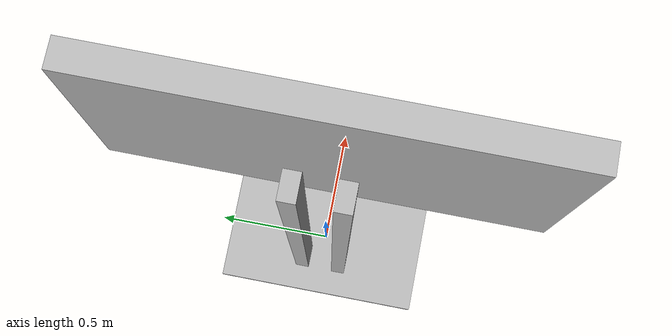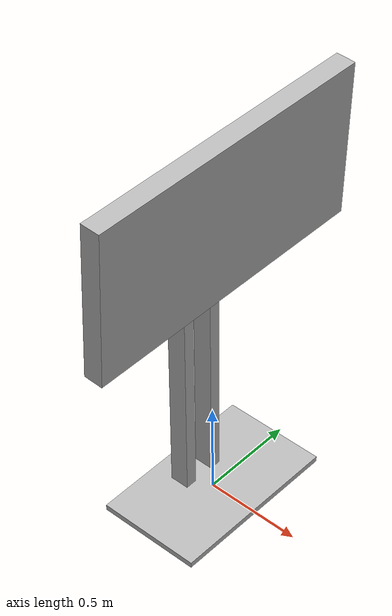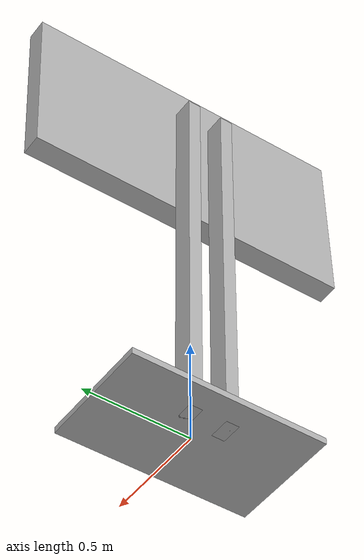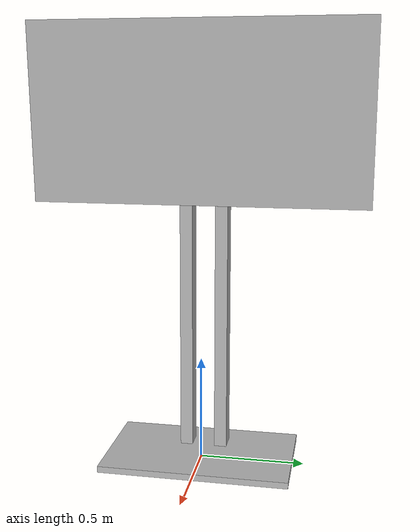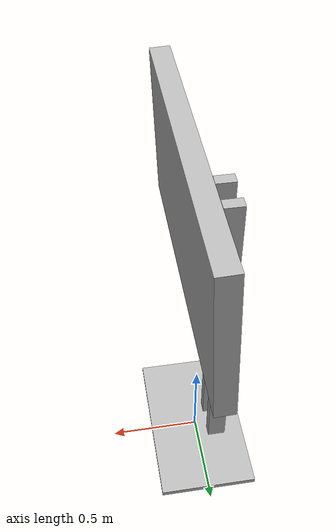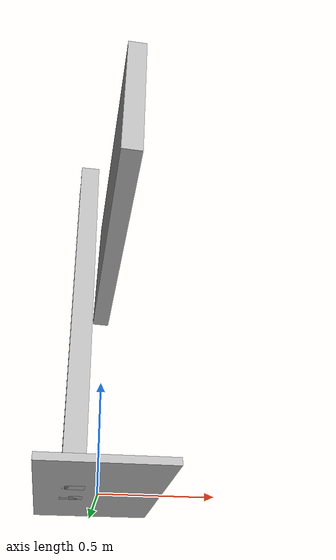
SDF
<?xml version="1.0"?>
<sdf version="1.6">
  <model name="rgo2019/tv">
    <link name="1_link">
      <collision name="1_col">
        <geometry>
          <box>
            <size>0.54 0.9 0.03</size>
          </box>
        </geometry>
      </collision>
      <visual name="1_vis">
        <geometry>
          <box>
            <size>0.54 0.9 0.03</size>
          </box>
        </geometry>
      </visual>
      <pose>0 0 0.015 0 0 0</pose>
    </link>
    <link name="2_link">
      <collision name="2_col">
        <geometry>
          <box>
            <size>0.1 0.06 1.8</size>
          </box>
        </geometry>
      </collision>
      <visual name="2_vis">
        <geometry>
          <box>
            <size>0.1 0.06 1.8</size>
          </box>
        </geometry>
      </visual>
      <pose>-0.11 -0.085 0.9 0 0 0</pose>
    </link>
    <link name="3_link">
      <collision name="3_col">
        <geometry>
          <box>
            <size>0.1 0.06 1.8</size>
          </box>
        </geometry>
      </collision>
      <visual name="3_vis">
        <geometry>
          <box>
            <size>0.1 0.06 1.8</size>
          </box>
        </geometry>
      </visual>
      <pose>-0.11 0.085 0.9 0 0 0</pose>
    </link>
    <link name="4_link">
      <collision name="4_col">
        <geometry>
          <box>
            <size>0.1 1.55 0.82</size>
          </box>
        </geometry>
      </collision>
      <visual name="4_vis">
        <geometry>
          <box>
            <size>0.1 1.55 0.82</size>
          </box>
        </geometry>
      </visual>
      <pose>0.06 0.0 1.67 0 0.04 0</pose>
    </link>
    <link name="in_front_of">
      <virtual_volume name="in_front_of_vv">
        <geometry>
          <box>
            <size>0.2 0.8 0.01</size>
          </box>
        </geometry>
        <pose>0.6 0.0 0.005 0 0 0</pose>
      </virtual_volume>
    </link>
    <static>true</static>
  </model>
</sdf>
